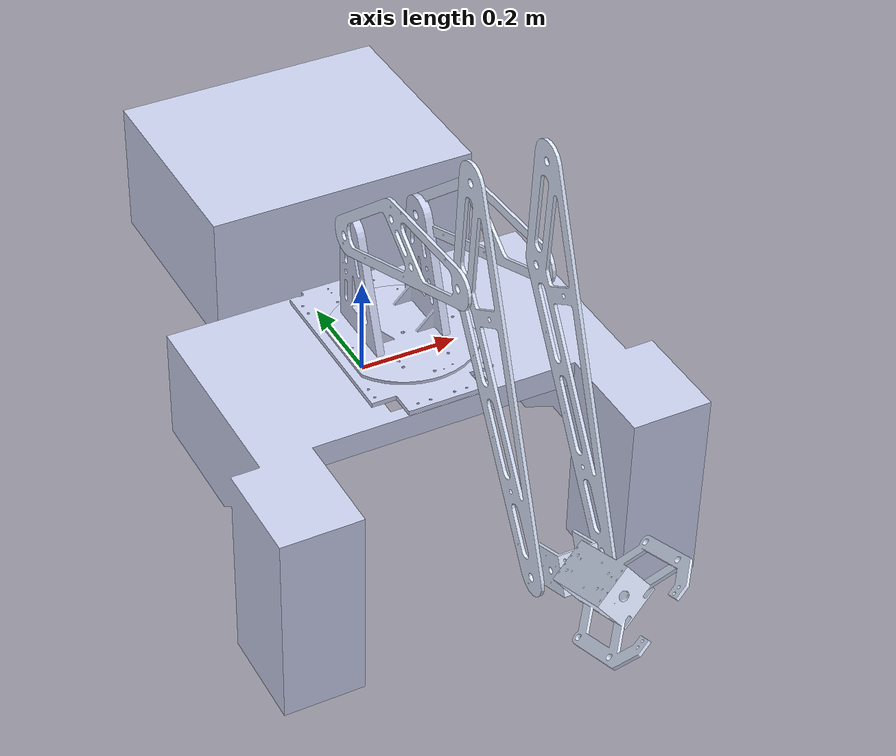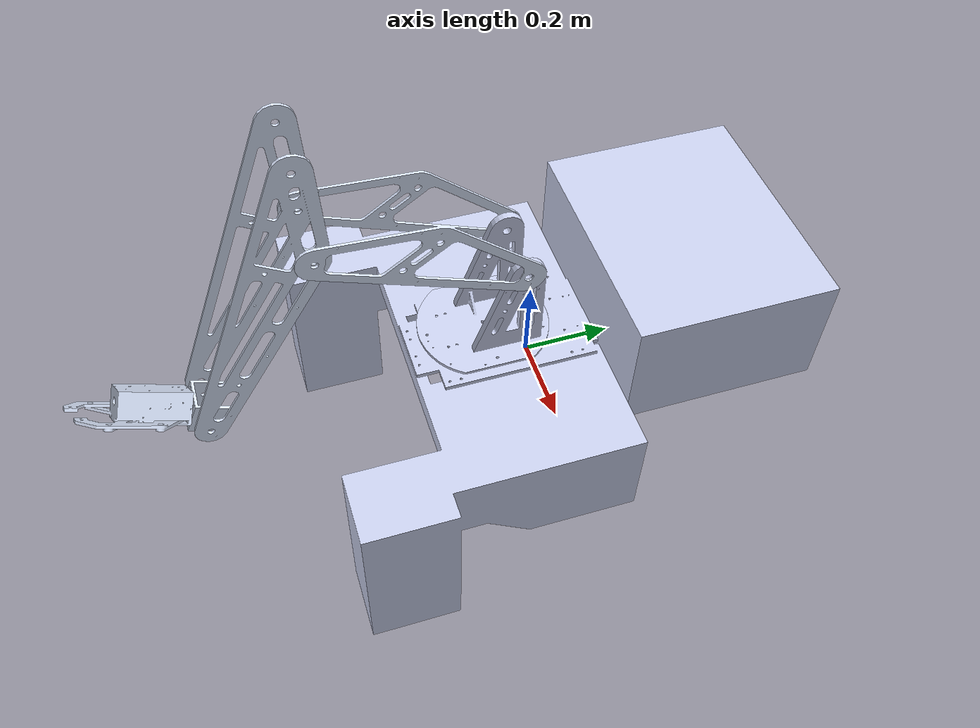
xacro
<?xml version="1.0"?>
<robot xmlns:xacro="http://www.ros.org/wiki/xacro" name="arm">
    <xacro:arg name="initial_positions_file" default="initial_positions.yaml" />

    <!-- Import arm urdf file -->
    <xacro:include filename="$(find robot_description)/urdf/arm.urdf" />

    <!-- Import control_xacro -->
    <xacro:include filename="arm.ros2_control.xacro" />

    <xacro:arm_ros2_control name="arm" initial_positions_file="$(arg initial_positions_file)"/>

</robot>

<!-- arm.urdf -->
<robot
  name="arm">
  <link
    name="arm_base_footprint">
    <inertial>
      <origin
        xyz="0.0245718759576531 0.0699463467606601 0.0971703622253317"
        rpy="0 0 0" />
      <mass
        value="119.491304287739" />
      <inertia
        ixx="15.3504436258168"
        ixy="-1.83243379729071E-06"
        ixz="3.96596317300498E-07"
        iyy="9.79865788195426"
        iyz="-4.36312632292381"
        izz="19.953186801234" />
    </inertial>
    <visual>
      <origin xyz="0 0 0" rpy="0 0 0" />
      <geometry>
        <mesh
          filename="package://robot_description/meshes/arm_base_footprint.STL" />
      </geometry>
      <material
        name="">
        <color
          rgba="0.792156862745098 0.819607843137255 0.933333333333333 1" />
      </material>
    </visual>
    <collision>
      <origin
        xyz="0 0 0"
        rpy="0 0 0" />
      <geometry>
        <mesh
          filename="package://robot_description/meshes/arm_base_footprint.STL" />
      </geometry>
    </collision>
  </link>
  <link
    name="arm_base">
    <inertial>
      <origin
        xyz="-0.0295481367181956 -7.2596956674463E-05 0.0797519788008734"
        rpy="0 0 0" />
      <mass
        value="3.22741129215856" />
      <inertia
        ixx="0.0149295089781395"
        ixy="1.40113881543758E-05"
        ixz="0.00163251860516278"
        iyy="0.0188400698128559"
        iyz="-1.46497334752122E-07"
        izz="0.0151539463795049" />
    </inertial>
    <visual>
      <origin
        xyz="0 0 0"
        rpy="0 0 0" />
      <geometry>
        <mesh
          filename="package://robot_description/meshes/arm_base.STL" />
      </geometry>
      <material
        name="">
        <color
          rgba="0.796078431372549 0.823529411764706 0.937254901960784 1" />
      </material>
    </visual>
    <collision>
      <origin
        xyz="0 0 0"
        rpy="0 0 0" />
      <geometry>
        <mesh
          filename="package://robot_description/meshes/arm_base.STL" />
      </geometry>
    </collision>
  </link>
  <joint
    name="arm_base_joint"
    type="revolute">
    <origin
      xyz="0.025047 -0.11824 0.13851"
      rpy="0 0 -1.5708" />
    <parent
      link="arm_base_footprint" />
    <child
      link="arm_base" />
    <axis
      xyz="0 0 1" />
    <limit
      lower="-1.57"
      upper="1.57"
      effort="10"
      velocity="10" />
  </joint>
  <link
    name="arm_shoulder">
    <inertial>
      <origin
        xyz="0.207946774744531 0.076200117432586 0.102327743304316"
        rpy="0 0 0" />
      <mass
        value="0.974957548893572" />
      <inertia
        ixx="0.00464714367493188"
        ixy="2.88504045659398E-09"
        ixz="-0.00681141145821841"
        iyy="0.0241635485497036"
        iyz="-1.31218558010455E-12"
        izz="0.0195229574439722" />
    </inertial>
    <visual>
      <origin
        xyz="0 0 0"
        rpy="0 0 0" />
      <geometry>
        <mesh
          filename="package://robot_description/meshes/arm_shoulder.STL" />
      </geometry>
      <material
        name="">
        <color
          rgba="0.866666666666667 0.909803921568627 1 1" />
      </material>
    </visual>
    <collision>
      <origin xyz="0 0 0" rpy="0 0 0" />
      <geometry>
        <mesh
          filename="package://robot_description/meshes/arm_shoulder.STL" />
      </geometry>
    </collision>
  </link>
  <joint
    name="arm_shoulder_joint"
    type="revolute">
    <origin
      xyz="-0.06985 -0.079375 0.22575"
      rpy="0 0 0" />
    <parent
      link="arm_base" />
    <child
      link="arm_shoulder" />
    <axis
      xyz="0 -1 0" />
    <limit
      lower="-1.57"
      upper="0.667"
      effort="10"
      velocity="10" />
  </joint>
  <link
    name="arm_elbow">
    <inertial>
      <origin
        xyz="0.111915739494498 0.0730249586080683 -0.104967246413695"
        rpy="0 0 0" />
      <mass
        value="1.84402735327987" />
      <inertia
        ixx="0.0740795916752292"
        ixy="3.57897826383779E-09"
        ixz="0.0294977280060406"
        iyy="0.0899370275946363"
        iyz="-1.48592172216262E-08"
        izz="0.0158698288504039" />
    </inertial>
    <visual>
      <origin
        xyz="0 0 0"
        rpy="0 0 0" />
      <geometry>
        <mesh
          filename="package://robot_description/meshes/arm_elbow.STL" />
      </geometry>
      <material
        name="">
        <color
          rgba="0.866666666666667 0.909803921568627 1 1" />
      </material>
    </visual>
    <collision>
      <origin
        xyz="0 0 0"
        rpy="0 0 0" />
      <geometry>
        <mesh
          filename="package://robot_description/meshes/arm_elbow.STL" />
      </geometry>
    </collision>
  </link>
  <joint
    name="arm_elbow_joint"
    type="revolute">
    <origin
      xyz="0.42568 0.003175 0.16682"
      rpy="0 0 0" />
    <parent
      link="arm_shoulder" />
    <child
      link="arm_elbow" />
    <axis
      xyz="0 1 0" />
    <limit
      lower="0"
      upper="0.8"
      effort="10"
      velocity="10" />
  </joint>
  <link
    name="arm_wrist">
    <inertial>
      <origin
        xyz="0.00758749942807957 0.0762897289232925 0.00309935288258165"
        rpy="0 0 0" />
      <mass
        value="0.266662965128273" />
      <inertia
        ixx="0.000402488452579321"
        ixy="-3.97836589242259E-07"
        ixz="-9.06656643854072E-06"
        iyy="0.000295655638047142"
        iyz="-2.08931811653999E-07"
        izz="0.000421254175588154" />
    </inertial>
    <visual>
      <origin
        xyz="0 0 0"
        rpy="0 0 0" />
      <geometry>
        <mesh
          filename="package://robot_description/meshes/arm_wrist.STL" />
      </geometry>
      <material
        name="">
        <color
          rgba="0.866666666666667 0.909803921568627 1 1" />
      </material>
    </visual>
    <collision>
      <origin
        xyz="0 0 0"
        rpy="0 0 0" />
      <geometry>
        <mesh
          filename="package://robot_description/meshes/arm_wrist.STL" />
      </geometry>
    </collision>
  </link>
  <joint
    name="arm_wrist_joint"
    type="revolute">
    <origin
      xyz="0.26467 0 -0.4336"
      rpy="0 0 0" />
    <parent
      link="arm_elbow" />
    <child
      link="arm_wrist" />
    <axis
      xyz="0 -1 0" />
    <limit
      lower="-1.57"
      upper="0"
      effort="10"
      velocity="10" />
  </joint>
  <link
    name="gripper">
    <inertial>
      <origin
        xyz="0.12320489633013 0.00538567775138803 -0.00620954234838522"
        rpy="0 0 0" />
      <mass
        value="0.635591580584949" />
      <inertia
        ixx="0.000351925210187695"
        ixy="1.46111614764599E-06"
        ixz="7.38574617353745E-07"
        iyy="0.00105539378215763"
        iyz="-0.000103696525958001"
        izz="0.00110712425743588" />
    </inertial>
    <visual>
      <origin
        xyz="0 0 0"
        rpy="0 0 0" />
      <geometry>
        <mesh
          filename="package://robot_description/meshes/gripper.STL" />
      </geometry>
      <material
        name="">
        <color
          rgba="0.866666666666667 0.909803921568627 1 1" />
      </material>
    </visual>
    <collision>
      <origin
        xyz="0 0 0"
        rpy="0 0 0" />
      <geometry>
        <mesh
          filename="package://robot_description/meshes/gripper.STL" />
      </geometry>
    </collision>
  </link>
  <joint
    name="gripper_joint"
    type="revolute">
    <origin
      xyz="0.0038697 0.074295 0.0022774"
      rpy="0 -0.39004 0" />
    <parent
      link="arm_wrist" />
    <child
      link="gripper" />
    <axis
      xyz="-1 0 0" />
    <limit
      lower="0"
      upper="3.14"
      effort="10"
      velocity="10" />
  </joint>
</robot>
